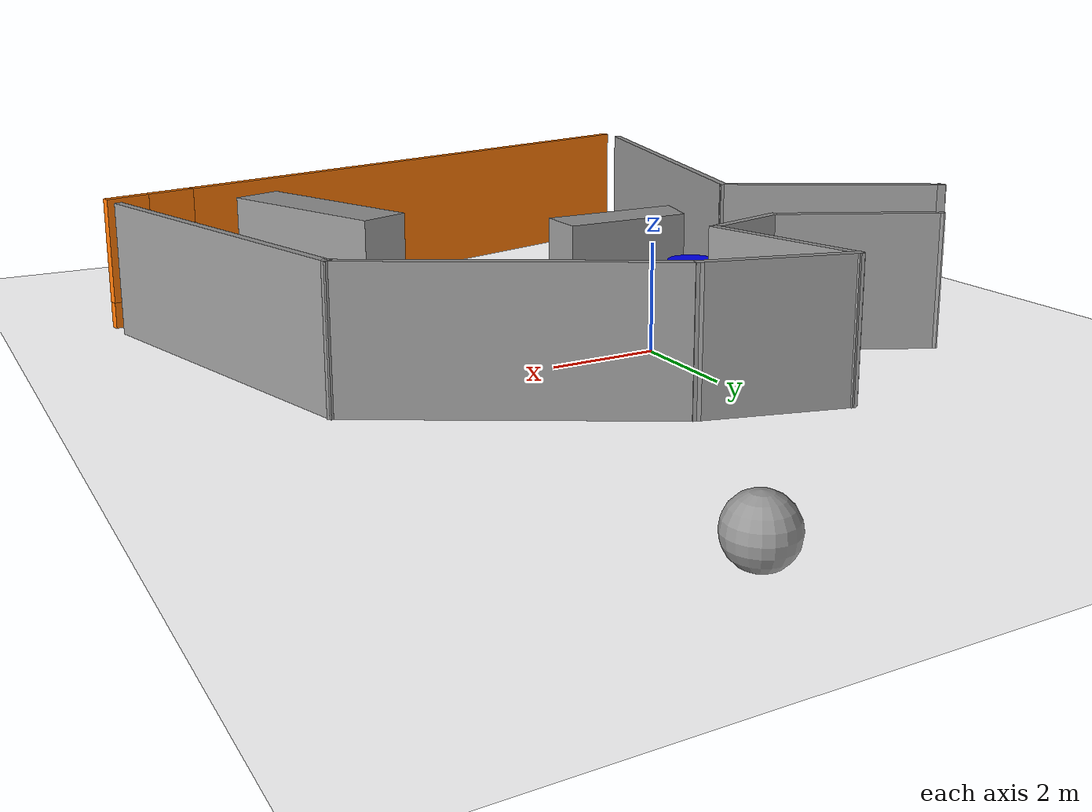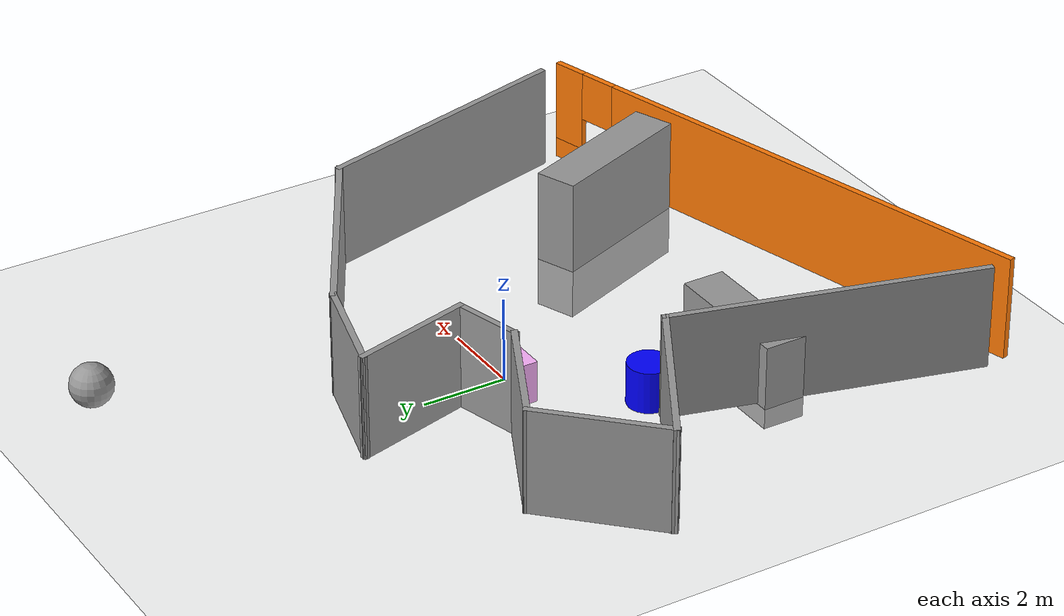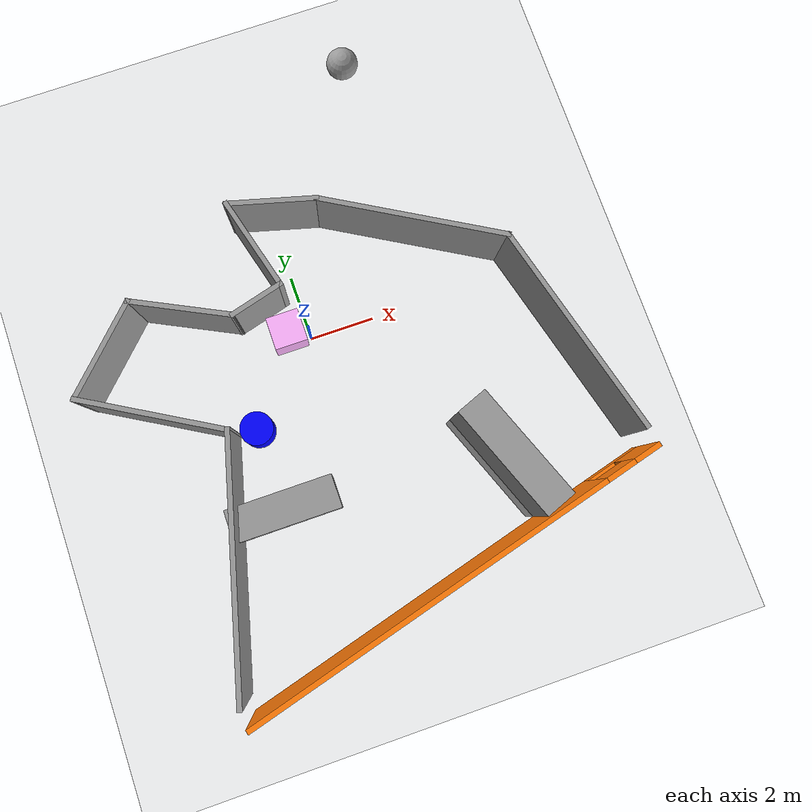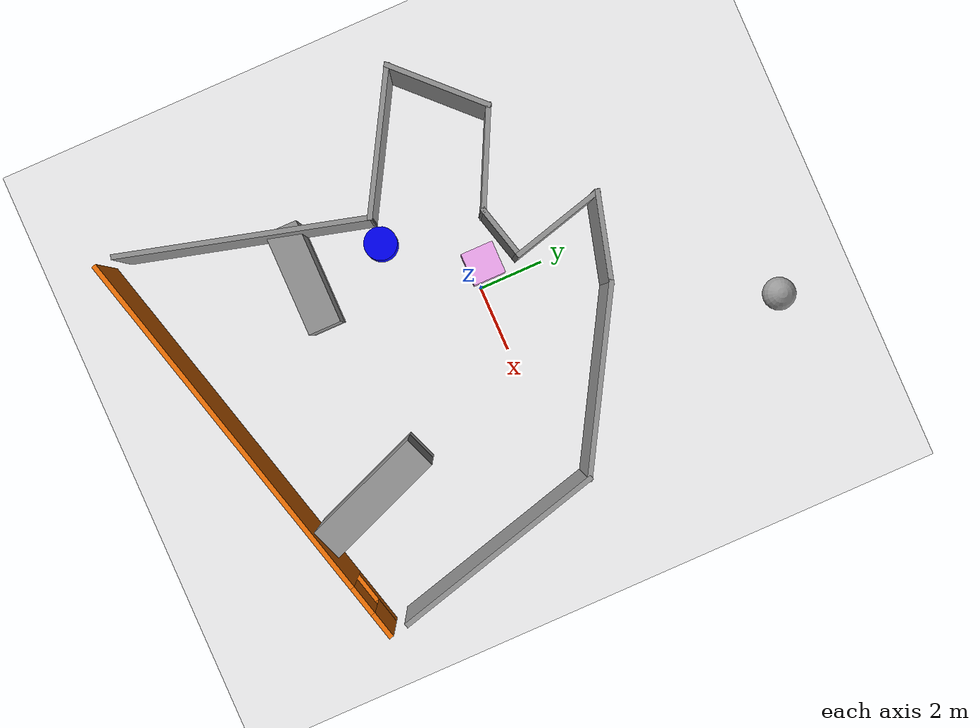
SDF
<sdf version="1.6">
 <world name="default">
  <plugin name="hello" filename="libhello.so"/>
  <light name="sun" type="directional">
   <pose>0 0 10 0 -0 0</pose>
   <diffuse>0.8 0.8 0.8 1</diffuse>
   <specular>0.2 0.2 0.2 1</specular>
   <attenuation>
    <range>1000</range>
    <constant>0.9</constant>
    <linear>0.01</linear>
    <quadratic>0.001</quadratic>
   </attenuation>
   <direction>-0.5 0.1 -0.9</direction>
   <spot><inner_angle>0</inner_angle><outer_angle>0</outer_angle><falloff>0</falloff></spot>
  </light>
  <model name="ground_plane">
   <static>1</static>
   <link name="link">
    <collision name="collision">
     <geometry><plane><normal>0 0 1</normal><size>100 100</size></plane></geometry>
     <surface>
      <contact><collide_bitmask>65535</collide_bitmask></contact>
      <friction><ode><mu>100</mu><mu2>50</mu2></ode></friction>
     </surface>
    </collision>
    <visual name="visual">
     <cast_shadows>0</cast_shadows>
     <geometry><plane><normal>0 0 1</normal><size>100 100</size></plane></geometry>
     <material>
      <script><uri>file://media/materials/scripts/gazebo.material</uri><name>Gazebo/Grey</name></script>
     </material>
    </visual>
   </link>
  </model>
  <gravity>0 0 -9.8</gravity>
  <magnetic_field>6e-06 2.3e-05 -4.2e-05</magnetic_field>
  <atmosphere type="adiabatic"/>
  <physics name="default_physics" default="0" type="ode">
   <max_step_size>0.001</max_step_size>
   <real_time_factor>1</real_time_factor>
   <real_time_update_rate>1000</real_time_update_rate>
  </physics>
  <scene><ambient>0.4 0.4 0.4 1</ambient><background>0.7 0.7 0.7 1</background><shadows>1</shadows></scene>
  <spherical_coordinates>
   <surface_model>EARTH_WGS84</surface_model>
   <latitude_deg>0</latitude_deg>
   <longitude_deg>0</longitude_deg>
   <elevation>0</elevation>
   <heading_deg>0</heading_deg>
  </spherical_coordinates>
  <model name="my_ball">
   <link name="link">
    <inertial>
     <mass>1</mass>
     <inertia><ixx>0.1</ixx><ixy>0</ixy><ixz>0</ixz><iyy>0.1</iyy><iyz>0</iyz><izz>0.1</izz></inertia>
    </inertial>
    <visual name="visual">
     <geometry><sphere><radius>0.5</radius></sphere></geometry>
     <material>
      <script><name>Gazebo/Grey</name><uri>file://media/materials/scripts/gazebo.material</uri></script>
      <shader type="pixel"><normal_map>__default__</normal_map></shader>
      <ambient>1 1 1 1</ambient>
      <diffuse>1 1 1 1</diffuse>
      <specular>1 1 1 1</specular>
      <emissive>1 1 1 1</emissive>
     </material>
    </visual>
    <collision name="collision">
     <geometry><sphere><radius>0.5</radius></sphere></geometry>
     <surface>
      <friction>
       <ode><mu>1</mu><mu2>1</mu2><fdir1>0 0 0</fdir1><slip1>0</slip1><slip2>0</slip2></ode>
       <torsional>
        <coefficient>1</coefficient>
        <patch_radius>0</patch_radius>
        <surface_radius>0</surface_radius>
        <use_patch_radius>1</use_patch_radius>
        <ode><slip>0</slip></ode>
       </torsional>
      </friction>
      <bounce><restitution_coefficient>0</restitution_coefficient><threshold>1e+06</threshold></bounce>
      <contact>
       <collide_without_contact>0</collide_without_contact>
       <collide_without_contact_bitmask>1</collide_without_contact_bitmask>
       <collide_bitmask>1</collide_bitmask>
       <ode>
        <soft_cfm>0</soft_cfm>
        <soft_erp>0.2</soft_erp>
        <kp>1e+13</kp>
        <kd>1</kd>
        <max_vel>0.01</max_vel>
        <min_depth>0</min_depth>
       </ode>
       <bullet>
        <split_impulse>1</split_impulse>
        <split_impulse_penetration_threshold>-0.01</split_impulse_penetration_threshold>
        <soft_cfm>0</soft_cfm>
        <soft_erp>0.2</soft_erp>
        <kp>1e+13</kp>
        <kd>1</kd>
       </bullet>
      </contact>
     </surface>
    </collision>
   </link>
   <static>0</static>
   <pose>3.73171 8.06734 0.5 0 -0 0</pose>
  </model>
  <plugin name="gazebo_occupancy_map" filename="libgazebo_2Dmap_plugin.so">
   <map_resolution>0.1</map_resolution>
   <map_height>0.3</map_height>
   <map_size_x>10</map_size_x>
   <map_size_y>10</map_size_y>
   <init_robot_x>0</init_robot_x>
   <init_robot_y>0</init_robot_y>
  </plugin>
  <plugin name="collision_map_creator" filename="libcollision_map_creator.so"/>
  <model name="unit_cylinder">
   <link name="link">
    <inertial>
     <mass>1</mass>
     <inertia><ixx>0.145833</ixx><ixy>0</ixy><ixz>0</ixz><iyy>0.145833</iyy><iyz>0</iyz><izz>0.125</izz></inertia>
    </inertial>
    <visual name="visual">
     <geometry><cylinder><radius>0.5</radius><length>1</length></cylinder></geometry>
     <material>
      <script><name>Gazebo/Grey</name><uri>file://media/materials/scripts/gazebo.material</uri></script>
      <shader type="pixel"><normal_map>__default__</normal_map></shader>
      <ambient>0 0 1 1</ambient>
      <diffuse>0 0 1 1</diffuse>
      <specular>0 0.01 1 1</specular>
      <emissive>0 0 1 1</emissive>
     </material>
    </visual>
    <collision name="collision">
     <geometry><cylinder><radius>0.5</radius><length>1</length></cylinder></geometry>
     <surface>
      <friction>
       <ode><mu>1</mu><mu2>1</mu2><fdir1>0 0 0</fdir1><slip1>0</slip1><slip2>0</slip2></ode>
       <torsional>
        <coefficient>1</coefficient>
        <patch_radius>0</patch_radius>
        <surface_radius>0</surface_radius>
        <use_patch_radius>1</use_patch_radius>
        <ode><slip>0</slip></ode>
       </torsional>
      </friction>
      <bounce><restitution_coefficient>0</restitution_coefficient><threshold>1e+06</threshold></bounce>
      <contact>
       <collide_without_contact>0</collide_without_contact>
       <collide_without_contact_bitmask>1</collide_without_contact_bitmask>
       <collide_bitmask>1</collide_bitmask>
       <ode>
        <soft_cfm>0</soft_cfm>
        <soft_erp>0.2</soft_erp>
        <kp>1e+13</kp>
        <kd>1</kd>
        <max_vel>0.01</max_vel>
        <min_depth>0</min_depth>
       </ode>
       <bullet>
        <split_impulse>1</split_impulse>
        <split_impulse_penetration_threshold>-0.01</split_impulse_penetration_threshold>
        <soft_cfm>0</soft_cfm>
        <soft_erp>0.2</soft_erp>
        <kp>1e+13</kp>
        <kd>1</kd>
       </bullet>
      </contact>
     </surface>
    </collision>
   </link>
   <static>0</static>
   <pose>-2.37467 -2.19604 0.499993 -3e-06 -2e-06 0</pose>
  </model>
  <model name="unit_box">
   <link name="link">
    <inertial>
     <mass>1</mass>
     <inertia>
      <ixx>0.166667</ixx>
      <ixy>0</ixy>
      <ixz>0</ixz>
      <iyy>0.166667</iyy>
      <iyz>0</iyz>
      <izz>0.166667</izz>
     </inertia>
    </inertial>
    <visual name="visual">
     <geometry><box><size>1 1 1</size></box></geometry>
     <material>
      <script><name>Gazebo/Grey</name><uri>file://media/materials/scripts/gazebo.material</uri></script>
      <shader type="pixel"><normal_map>__default__</normal_map></shader>
      <ambient>0.3 0.3 0.3 1</ambient>
      <diffuse>1 0.7 1 1</diffuse>
      <specular>1 0.01 1 1</specular>
      <emissive>1 0 1 1</emissive>
     </material>
    </visual>
    <collision name="collision">
     <geometry><box><size>1 1 1</size></box></geometry>
     <surface>
      <friction>
       <ode><mu>1</mu><mu2>1</mu2><fdir1>0 0 0</fdir1><slip1>0</slip1><slip2>0</slip2></ode>
       <torsional>
        <coefficient>1</coefficient>
        <patch_radius>0</patch_radius>
        <surface_radius>0</surface_radius>
        <use_patch_radius>1</use_patch_radius>
        <ode><slip>0</slip></ode>
       </torsional>
      </friction>
      <bounce><restitution_coefficient>0</restitution_coefficient><threshold>1e+06</threshold></bounce>
      <contact>
       <collide_without_contact>0</collide_without_contact>
       <collide_without_contact_bitmask>1</collide_without_contact_bitmask>
       <collide_bitmask>1</collide_bitmask>
       <ode>
        <soft_cfm>0</soft_cfm>
        <soft_erp>0.2</soft_erp>
        <kp>1e+13</kp>
        <kd>1</kd>
        <max_vel>0.01</max_vel>
        <min_depth>0</min_depth>
       </ode>
       <bullet>
        <split_impulse>1</split_impulse>
        <split_impulse_penetration_threshold>-0.01</split_impulse_penetration_threshold>
        <soft_cfm>0</soft_cfm>
        <soft_erp>0.2</soft_erp>
        <kp>1e+13</kp>
        <kd>1</kd>
       </bullet>
      </contact>
     </surface>
    </collision>
   </link>
   <static>0</static>
   <pose>-0.625936 0.339686 0.5 0 -0 0</pose>
  </model>
  <model name="Untitled">
   <link name="Wall_0">
    <pose>-6.27688 3.71893 0 0 0 -2.35619</pose>
    <visual name="Wall_0_Visual">
     <pose>0 0 1.25 0 -0 0</pose>
     <geometry><box><size>3.25 0.15 2.5</size></box></geometry>
     <material>
      <script><uri>file://media/materials/scripts/gazebo.material</uri><name>Gazebo/Grey</name></script>
      <ambient>1 1 1 1</ambient>
      <shader type="pixel"/>
      <diffuse>0.7 0.7 0.7 1</diffuse>
      <specular>0.01 0.01 0.01 1</specular>
      <emissive>0 0 0 1</emissive>
     </material>
     <meta><layer>0</layer></meta>
    </visual>
    <collision name="Wall_0_Collision">
     <pose>0 0 1.25 0 -0 0</pose>
     <geometry><box><size>3.25 0.15 2.5</size></box></geometry>
     <surface>
      <friction>
       <ode><mu>1</mu><mu2>1</mu2><fdir1>0 0 0</fdir1><slip1>0</slip1><slip2>0</slip2></ode>
       <torsional>
        <coefficient>1</coefficient>
        <patch_radius>0</patch_radius>
        <surface_radius>0</surface_radius>
        <use_patch_radius>1</use_patch_radius>
        <ode><slip>0</slip></ode>
       </torsional>
      </friction>
      <bounce><restitution_coefficient>0</restitution_coefficient><threshold>1e+06</threshold></bounce>
      <contact>
       <collide_without_contact>0</collide_without_contact>
       <collide_without_contact_bitmask>1</collide_without_contact_bitmask>
       <collide_bitmask>1</collide_bitmask>
       <ode>
        <soft_cfm>0</soft_cfm>
        <soft_erp>0.2</soft_erp>
        <kp>1e+13</kp>
        <kd>1</kd>
        <max_vel>0.01</max_vel>
        <min_depth>0</min_depth>
       </ode>
       <bullet>
        <split_impulse>1</split_impulse>
        <split_impulse_penetration_threshold>-0.01</split_impulse_penetration_threshold>
        <soft_cfm>0</soft_cfm>
        <soft_erp>0.2</soft_erp>
        <kp>1e+13</kp>
        <kd>1</kd>
       </bullet>
      </contact>
     </surface>
    </collision>
   </link>
   <link name="Wall_1">
    <pose>-5.48929 1.53542 0 0 0 -0.523599</pose>
    <visual name="Wall_1_Visual">
     <pose>0 0 1.25 0 -0 0</pose>
     <geometry><box><size>4.5 0.15 2.5</size></box></geometry>
     <material>
      <script><uri>file://media/materials/scripts/gazebo.material</uri><name>Gazebo/Grey</name></script>
      <ambient>1 1 1 1</ambient>
      <shader type="pixel"/>
      <diffuse>0.7 0.7 0.7 1</diffuse>
      <specular>0.01 0.01 0.01 1</specular>
      <emissive>0 0 0 1</emissive>
     </material>
     <meta><layer>0</layer></meta>
    </visual>
    <collision name="Wall_1_Collision">
     <pose>0 0 1.25 0 -0 0</pose>
     <geometry><box><size>4.5 0.15 2.5</size></box></geometry>
     <surface>
      <friction>
       <ode><mu>1</mu><mu2>1</mu2><fdir1>0 0 0</fdir1><slip1>0</slip1><slip2>0</slip2></ode>
       <torsional>
        <coefficient>1</coefficient>
        <patch_radius>0</patch_radius>
        <surface_radius>0</surface_radius>
        <use_patch_radius>1</use_patch_radius>
        <ode><slip>0</slip></ode>
       </torsional>
      </friction>
      <bounce><restitution_coefficient>0</restitution_coefficient><threshold>1e+06</threshold></bounce>
      <contact>
       <collide_without_contact>0</collide_without_contact>
       <collide_without_contact_bitmask>1</collide_without_contact_bitmask>
       <collide_bitmask>1</collide_bitmask>
       <ode>
        <soft_cfm>0</soft_cfm>
        <soft_erp>0.2</soft_erp>
        <kp>1e+13</kp>
        <kd>1</kd>
        <max_vel>0.01</max_vel>
        <min_depth>0</min_depth>
       </ode>
       <bullet>
        <split_impulse>1</split_impulse>
        <split_impulse_penetration_threshold>-0.01</split_impulse_penetration_threshold>
        <soft_cfm>0</soft_cfm>
        <soft_erp>0.2</soft_erp>
        <kp>1e+13</kp>
        <kd>1</kd>
       </bullet>
      </contact>
     </surface>
    </collision>
   </link>
   <link name="Wall_2">
    <pose>-4.55684 -3.10186 0 0 0 -1.8326</pose>
    <visual name="Wall_2_Visual">
     <pose>0 0 1.25 0 -0 0</pose>
     <geometry><box><size>7.5 0.15 2.5</size></box></geometry>
     <material>
      <script><uri>file://media/materials/scripts/gazebo.material</uri><name>Gazebo/Grey</name></script>
      <ambient>1 1 1 1</ambient>
      <shader type="pixel"/>
      <diffuse>0.7 0.7 0.7 1</diffuse>
      <specular>0.01 0.01 0.01 1</specular>
      <emissive>0 0 0 1</emissive>
     </material>
     <meta><layer>0</layer></meta>
    </visual>
    <collision name="Wall_2_Collision">
     <pose>0 0 1.25 0 -0 0</pose>
     <geometry><box><size>7.5 0.15 2.5</size></box></geometry>
     <surface>
      <friction>
       <ode><mu>1</mu><mu2>1</mu2><fdir1>0 0 0</fdir1><slip1>0</slip1><slip2>0</slip2></ode>
       <torsional>
        <coefficient>1</coefficient>
        <patch_radius>0</patch_radius>
        <surface_radius>0</surface_radius>
        <use_patch_radius>1</use_patch_radius>
        <ode><slip>0</slip></ode>
       </torsional>
      </friction>
      <bounce><restitution_coefficient>0</restitution_coefficient><threshold>1e+06</threshold></bounce>
      <contact>
       <collide_without_contact>0</collide_without_contact>
       <collide_without_contact_bitmask>1</collide_without_contact_bitmask>
       <collide_bitmask>1</collide_bitmask>
       <ode>
        <soft_cfm>0</soft_cfm>
        <soft_erp>0.2</soft_erp>
        <kp>1e+13</kp>
        <kd>1</kd>
        <max_vel>0.01</max_vel>
        <min_depth>0</min_depth>
       </ode>
       <bullet>
        <split_impulse>1</split_impulse>
        <split_impulse_penetration_threshold>-0.01</split_impulse_penetration_threshold>
        <soft_cfm>0</soft_cfm>
        <soft_erp>0.2</soft_erp>
        <kp>1e+13</kp>
        <kd>1</kd>
       </bullet>
      </contact>
     </surface>
    </collision>
   </link>
   <link name="Wall_3">
    <pose>1.02123 -5.51923 0 0 -0 0.261799</pose>
    <visual name="Wall_3_Visual_0">
     <pose>-0.895801 0 1.25 0 -0 0</pose>
     <geometry><box><size>11.7084 0.15 2.5</size></box></geometry>
     <material>
      <script><uri>file://media/materials/scripts/gazebo.material</uri><name>Gazebo/Grey</name></script>
      <ambient>0.996078 0.47451 0.0196078 1</ambient>
      <shader type="pixel"/>
      <diffuse>0.7 0.7 0.7 1</diffuse>
      <specular>0.01 0.01 0.01 1</specular>
      <emissive>0 0 0 1</emissive>
     </material>
     <meta><layer>0</layer></meta>
    </visual>
    <visual name="Wall_3_Visual_1">
     <pose>5.8542 0 0.25 0 -0 0</pose>
     <geometry><box><size>1.7916 0.15 0.5</size></box></geometry>
     <material>
      <script><uri>file://media/materials/scripts/gazebo.material</uri><name>Gazebo/Grey</name></script>
      <ambient>0.996078 0.47451 0.0196078 1</ambient>
      <shader type="pixel"/>
      <diffuse>0.7 0.7 0.7 1</diffuse>
      <specular>0.01 0.01 0.01 1</specular>
      <emissive>0 0 0 1</emissive>
     </material>
     <meta><layer>0</layer></meta>
    </visual>
    <visual name="Wall_3_Visual_2">
     <pose>6.32604 0 1.5 0 -0 0</pose>
     <geometry><box><size>0.847917 0.15 2</size></box></geometry>
     <material>
      <script><uri>file://media/materials/scripts/gazebo.material</uri><name>Gazebo/Grey</name></script>
      <ambient>0.996078 0.47451 0.0196078 1</ambient>
      <shader type="pixel"/>
      <diffuse>0.7 0.7 0.7 1</diffuse>
      <specular>0.01 0.01 0.01 1</specular>
      <emissive>0 0 0 1</emissive>
     </material>
     <meta><layer>0</layer></meta>
    </visual>
    <visual name="Wall_3_Visual_3">
     <pose>5.43024 0 1.9 0 -0 0</pose>
     <geometry><box><size>0.943685 0.15 1.2</size></box></geometry>
     <material>
      <script><uri>file://media/materials/scripts/gazebo.material</uri><name>Gazebo/Grey</name></script>
      <ambient>0.996078 0.47451 0.0196078 1</ambient>
      <shader type="pixel"/>
      <diffuse>0.7 0.7 0.7 1</diffuse>
      <specular>0.01 0.01 0.01 1</specular>
      <emissive>0 0 0 1</emissive>
     </material>
     <meta><layer>0</layer></meta>
    </visual>
    <collision name="Wall_3_Collision_0">
     <pose>-0.895801 0 1.25 0 -0 0</pose>
     <geometry><box><size>11.7084 0.15 2.5</size></box></geometry>
     <surface>
      <friction>
       <ode><mu>1</mu><mu2>1</mu2><fdir1>0 0 0</fdir1><slip1>0</slip1><slip2>0</slip2></ode>
       <torsional>
        <coefficient>1</coefficient>
        <patch_radius>0</patch_radius>
        <surface_radius>0</surface_radius>
        <use_patch_radius>1</use_patch_radius>
        <ode><slip>0</slip></ode>
       </torsional>
      </friction>
      <bounce><restitution_coefficient>0</restitution_coefficient><threshold>1e+06</threshold></bounce>
      <contact>
       <collide_without_contact>0</collide_without_contact>
       <collide_without_contact_bitmask>1</collide_without_contact_bitmask>
       <collide_bitmask>1</collide_bitmask>
       <ode>
        <soft_cfm>0</soft_cfm>
        <soft_erp>0.2</soft_erp>
        <kp>1e+13</kp>
        <kd>1</kd>
        <max_vel>0.01</max_vel>
        <min_depth>0</min_depth>
       </ode>
       <bullet>
        <split_impulse>1</split_impulse>
        <split_impulse_penetration_threshold>-0.01</split_impulse_penetration_threshold>
        <soft_cfm>0</soft_cfm>
        <soft_erp>0.2</soft_erp>
        <kp>1e+13</kp>
        <kd>1</kd>
       </bullet>
      </contact>
     </surface>
    </collision>
    <collision name="Wall_3_Collision_1">
     <pose>5.8542 0 0.25 0 -0 0</pose>
     <geometry><box><size>1.7916 0.15 0.5</size></box></geometry>
     <surface>
      <friction>
       <ode><mu>1</mu><mu2>1</mu2><fdir1>0 0 0</fdir1><slip1>0</slip1><slip2>0</slip2></ode>
       <torsional>
        <coefficient>1</coefficient>
        <patch_radius>0</patch_radius>
        <surface_radius>0</surface_radius>
        <use_patch_radius>1</use_patch_radius>
        <ode><slip>0</slip></ode>
       </torsional>
      </friction>
      <bounce><restitution_coefficient>0</restitution_coefficient><threshold>1e+06</threshold></bounce>
      <contact>
       <collide_without_contact>0</collide_without_contact>
       <collide_without_contact_bitmask>1</collide_without_contact_bitmask>
       <collide_bitmask>1</collide_bitmask>
       <ode>
        <soft_cfm>0</soft_cfm>
        <soft_erp>0.2</soft_erp>
        <kp>1e+13</kp>
        <kd>1</kd>
        <max_vel>0.01</max_vel>
        <min_depth>0</min_depth>
       </ode>
       <bullet>
        <split_impulse>1</split_impulse>
        <split_impulse_penetration_threshold>-0.01</split_impulse_penetration_threshold>
        <soft_cfm>0</soft_cfm>
        <soft_erp>0.2</soft_erp>
        <kp>1e+13</kp>
        <kd>1</kd>
       </bullet>
      </contact>
     </surface>
    </collision>
    <collision name="Wall_3_Collision_2">
     <pose>6.32604 0 1.5 0 -0 0</pose>
     <geometry><box><size>0.847917 0.15 2</size></box></geometry>
     <surface>
      <friction>
       <ode><mu>1</mu><mu2>1</mu2><fdir1>0 0 0</fdir1><slip1>0</slip1><slip2>0</slip2></ode>
       <torsional>
        <coefficient>1</coefficient>
        <patch_radius>0</patch_radius>
        <surface_radius>0</surface_radius>
        <use_patch_radius>1</use_patch_radius>
        <ode><slip>0</slip></ode>
       </torsional>
      </friction>
      <bounce><restitution_coefficient>0</restitution_coefficient><threshold>1e+06</threshold></bounce>
      <contact>
       <collide_without_contact>0</collide_without_contact>
       <collide_without_contact_bitmask>1</collide_without_contact_bitmask>
       <collide_bitmask>1</collide_bitmask>
       <ode>
        <soft_cfm>0</soft_cfm>
        <soft_erp>0.2</soft_erp>
        <kp>1e+13</kp>
        <kd>1</kd>
        <max_vel>0.01</max_vel>
        <min_depth>0</min_depth>
       </ode>
       <bullet>
        <split_impulse>1</split_impulse>
        <split_impulse_penetration_threshold>-0.01</split_impulse_penetration_threshold>
        <soft_cfm>0</soft_cfm>
        <soft_erp>0.2</soft_erp>
        <kp>1e+13</kp>
        <kd>1</kd>
       </bullet>
      </contact>
     </surface>
    </collision>
    <collision name="Wall_3_Collision_3">
     <pose>5.43024 0 1.9 0 -0 0</pose>
     <geometry><box><size>0.943685 0.15 1.2</size></box></geometry>
     <surface>
      <friction>
       <ode><mu>1</mu><mu2>1</mu2><fdir1>0 0 0</fdir1><slip1>0</slip1><slip2>0</slip2></ode>
       <torsional>
        <coefficient>1</coefficient>
        <patch_radius>0</patch_radius>
        <surface_radius>0</surface_radius>
        <use_patch_radius>1</use_patch_radius>
        <ode><slip>0</slip></ode>
       </torsional>
      </friction>
      <bounce><restitution_coefficient>0</restitution_coefficient><threshold>1e+06</threshold></bounce>
      <contact>
       <collide_without_contact>0</collide_without_contact>
       <collide_without_contact_bitmask>1</collide_without_contact_bitmask>
       <collide_bitmask>1</collide_bitmask>
       <ode>
        <soft_cfm>0</soft_cfm>
        <soft_erp>0.2</soft_erp>
        <kp>1e+13</kp>
        <kd>1</kd>
        <max_vel>0.01</max_vel>
        <min_depth>0</min_depth>
       </ode>
       <bullet>
        <split_impulse>1</split_impulse>
        <split_impulse_penetration_threshold>-0.01</split_impulse_penetration_threshold>
        <soft_cfm>0</soft_cfm>
        <soft_erp>0.2</soft_erp>
        <kp>1e+13</kp>
        <kd>1</kd>
       </bullet>
      </contact>
     </surface>
    </collision>
   </link>
   <link name="Wall_4">
    <pose>6.533 -0.008848 0 0 -0 1.8326</pose>
    <visual name="Wall_4_Visual">
     <pose>0 0 1.25 0 -0 0</pose>
     <geometry><box><size>6.75 0.15 2.5</size></box></geometry>
     <material>
      <script><uri>file://media/materials/scripts/gazebo.material</uri><name>Gazebo/Grey</name></script>
      <ambient>1 1 1 1</ambient>
      <shader type="pixel"/>
      <diffuse>0.7 0.7 0.7 1</diffuse>
      <specular>0.01 0.01 0.01 1</specular>
      <emissive>0 0 0 1</emissive>
     </material>
     <meta><layer>0</layer></meta>
    </visual>
    <collision name="Wall_4_Collision">
     <pose>0 0 1.25 0 -0 0</pose>
     <geometry><box><size>6.75 0.15 2.5</size></box></geometry>
     <surface>
      <friction>
       <ode><mu>1</mu><mu2>1</mu2><fdir1>0 0 0</fdir1><slip1>0</slip1><slip2>0</slip2></ode>
       <torsional>
        <coefficient>1</coefficient>
        <patch_radius>0</patch_radius>
        <surface_radius>0</surface_radius>
        <use_patch_radius>1</use_patch_radius>
        <ode><slip>0</slip></ode>
       </torsional>
      </friction>
      <bounce><restitution_coefficient>0</restitution_coefficient><threshold>1e+06</threshold></bounce>
      <contact>
       <collide_without_contact>0</collide_without_contact>
       <collide_without_contact_bitmask>1</collide_without_contact_bitmask>
       <collide_bitmask>1</collide_bitmask>
       <ode>
        <soft_cfm>0</soft_cfm>
        <soft_erp>0.2</soft_erp>
        <kp>1e+13</kp>
        <kd>1</kd>
        <max_vel>0.01</max_vel>
        <min_depth>0</min_depth>
       </ode>
       <bullet>
        <split_impulse>1</split_impulse>
        <split_impulse_penetration_threshold>-0.01</split_impulse_penetration_threshold>
        <soft_cfm>0</soft_cfm>
        <soft_erp>0.2</soft_erp>
        <kp>1e+13</kp>
        <kd>1</kd>
       </bullet>
      </contact>
     </surface>
    </collision>
   </link>
   <link name="Wall_5">
    <pose>3.25403 4.57871 0 0 -0 2.61799</pose>
    <visual name="Wall_5_Visual">
     <pose>0 0 1.25 0 -0 0</pose>
     <geometry><box><size>5.75 0.15 2.5</size></box></geometry>
     <material>
      <script><uri>file://media/materials/scripts/gazebo.material</uri><name>Gazebo/Grey</name></script>
      <ambient>1 1 1 1</ambient>
      <shader type="pixel"/>
      <diffuse>0.7 0.7 0.7 1</diffuse>
      <specular>0.01 0.01 0.01 1</specular>
      <emissive>0 0 0 1</emissive>
     </material>
     <meta><layer>0</layer></meta>
    </visual>
    <collision name="Wall_5_Collision">
     <pose>0 0 1.25 0 -0 0</pose>
     <geometry><box><size>5.75 0.15 2.5</size></box></geometry>
     <surface>
      <friction>
       <ode><mu>1</mu><mu2>1</mu2><fdir1>0 0 0</fdir1><slip1>0</slip1><slip2>0</slip2></ode>
       <torsional>
        <coefficient>1</coefficient>
        <patch_radius>0</patch_radius>
        <surface_radius>0</surface_radius>
        <use_patch_radius>1</use_patch_radius>
        <ode><slip>0</slip></ode>
       </torsional>
      </friction>
      <bounce><restitution_coefficient>0</restitution_coefficient><threshold>1e+06</threshold></bounce>
      <contact>
       <collide_without_contact>0</collide_without_contact>
       <collide_without_contact_bitmask>1</collide_without_contact_bitmask>
       <collide_bitmask>1</collide_bitmask>
       <ode>
        <soft_cfm>0</soft_cfm>
        <soft_erp>0.2</soft_erp>
        <kp>1e+13</kp>
        <kd>1</kd>
        <max_vel>0.01</max_vel>
        <min_depth>0</min_depth>
       </ode>
       <bullet>
        <split_impulse>1</split_impulse>
        <split_impulse_penetration_threshold>-0.01</split_impulse_penetration_threshold>
        <soft_cfm>0</soft_cfm>
        <soft_erp>0.2</soft_erp>
        <kp>1e+13</kp>
        <kd>1</kd>
       </bullet>
      </contact>
     </surface>
    </collision>
   </link>
   <link name="Wall_6">
    <pose>-0.426546 6.31517 0 0 -0 2.87979</pose>
    <visual name="Wall_6_Visual">
     <pose>0 0 1.25 0 -0 0</pose>
     <geometry><box><size>2.75 0.15 2.5</size></box></geometry>
     <material>
      <script><uri>file://media/materials/scripts/gazebo.material</uri><name>Gazebo/Grey</name></script>
      <ambient>1 1 1 1</ambient>
      <shader type="pixel"/>
      <diffuse>0.7 0.7 0.7 1</diffuse>
      <specular>0.01 0.01 0.01 1</specular>
      <emissive>0 0 0 1</emissive>
     </material>
     <meta><layer>0</layer></meta>
    </visual>
    <collision name="Wall_6_Collision">
     <pose>0 0 1.25 0 -0 0</pose>
     <geometry><box><size>2.75 0.15 2.5</size></box></geometry>
     <surface>
      <friction>
       <ode><mu>1</mu><mu2>1</mu2><fdir1>0 0 0</fdir1><slip1>0</slip1><slip2>0</slip2></ode>
       <torsional>
        <coefficient>1</coefficient>
        <patch_radius>0</patch_radius>
        <surface_radius>0</surface_radius>
        <use_patch_radius>1</use_patch_radius>
        <ode><slip>0</slip></ode>
       </torsional>
      </friction>
      <bounce><restitution_coefficient>0</restitution_coefficient><threshold>1e+06</threshold></bounce>
      <contact>
       <collide_without_contact>0</collide_without_contact>
       <collide_without_contact_bitmask>1</collide_without_contact_bitmask>
       <collide_bitmask>1</collide_bitmask>
       <ode>
        <soft_cfm>0</soft_cfm>
        <soft_erp>0.2</soft_erp>
        <kp>1e+13</kp>
        <kd>1</kd>
        <max_vel>0.01</max_vel>
        <min_depth>0</min_depth>
       </ode>
       <bullet>
        <split_impulse>1</split_impulse>
        <split_impulse_penetration_threshold>-0.01</split_impulse_penetration_threshold>
        <soft_cfm>0</soft_cfm>
        <soft_erp>0.2</soft_erp>
        <kp>1e+13</kp>
        <kd>1</kd>
       </bullet>
      </contact>
     </surface>
    </collision>
   </link>
   <link name="Wall_7">
    <pose>-1.31343 5.27519 0 0 0 -1.309</pose>
    <visual name="Wall_7_Visual">
     <pose>0 0 1.25 0 -0 0</pose>
     <geometry><box><size>3 0.15 2.5</size></box></geometry>
     <material>
      <script><uri>file://media/materials/scripts/gazebo.material</uri><name>Gazebo/Grey</name></script>
      <ambient>1 1 1 1</ambient>
      <shader type="pixel"/>
      <diffuse>0.7 0.7 0.7 1</diffuse>
      <specular>0.01 0.01 0.01 1</specular>
      <emissive>0 0 0 1</emissive>
     </material>
     <meta><layer>0</layer></meta>
    </visual>
    <collision name="Wall_7_Collision">
     <pose>0 0 1.25 0 -0 0</pose>
     <geometry><box><size>3 0.15 2.5</size></box></geometry>
     <surface>
      <friction>
       <ode><mu>1</mu><mu2>1</mu2><fdir1>0 0 0</fdir1><slip1>0</slip1><slip2>0</slip2></ode>
       <torsional>
        <coefficient>1</coefficient>
        <patch_radius>0</patch_radius>
        <surface_radius>0</surface_radius>
        <use_patch_radius>1</use_patch_radius>
        <ode><slip>0</slip></ode>
       </torsional>
      </friction>
      <bounce><restitution_coefficient>0</restitution_coefficient><threshold>1e+06</threshold></bounce>
      <contact>
       <collide_without_contact>0</collide_without_contact>
       <collide_without_contact_bitmask>1</collide_without_contact_bitmask>
       <collide_bitmask>1</collide_bitmask>
       <ode>
        <soft_cfm>0</soft_cfm>
        <soft_erp>0.2</soft_erp>
        <kp>1e+13</kp>
        <kd>1</kd>
        <max_vel>0.01</max_vel>
        <min_depth>0</min_depth>
       </ode>
       <bullet>
        <split_impulse>1</split_impulse>
        <split_impulse_penetration_threshold>-0.01</split_impulse_penetration_threshold>
        <soft_cfm>0</soft_cfm>
        <soft_erp>0.2</soft_erp>
        <kp>1e+13</kp>
        <kd>1</kd>
       </bullet>
      </contact>
     </surface>
    </collision>
   </link>
   <link name="Wall_8">
    <pose>-1.71736 3.69169 0 0 0 -2.87979</pose>
    <visual name="Wall_8_Visual">
     <pose>0 0 1.25 0 -0 0</pose>
     <geometry><box><size>1.75 0.15 2.5</size></box></geometry>
     <material>
      <script><uri>file://media/materials/scripts/gazebo.material</uri><name>Gazebo/Grey</name></script>
      <ambient>1 1 1 1</ambient>
      <shader type="pixel"/>
      <diffuse>0.7 0.7 0.7 1</diffuse>
      <specular>0.01 0.01 0.01 1</specular>
      <emissive>0 0 0 1</emissive>
     </material>
     <meta><layer>0</layer></meta>
    </visual>
    <collision name="Wall_8_Collision">
     <pose>0 0 1.25 0 -0 0</pose>
     <geometry><box><size>1.75 0.15 2.5</size></box></geometry>
     <surface>
      <friction>
       <ode><mu>1</mu><mu2>1</mu2><fdir1>0 0 0</fdir1><slip1>0</slip1><slip2>0</slip2></ode>
       <torsional>
        <coefficient>1</coefficient>
        <patch_radius>0</patch_radius>
        <surface_radius>0</surface_radius>
        <use_patch_radius>1</use_patch_radius>
        <ode><slip>0</slip></ode>
       </torsional>
      </friction>
      <bounce><restitution_coefficient>0</restitution_coefficient><threshold>1e+06</threshold></bounce>
      <contact>
       <collide_without_contact>0</collide_without_contact>
       <collide_without_contact_bitmask>1</collide_without_contact_bitmask>
       <collide_bitmask>1</collide_bitmask>
       <ode>
        <soft_cfm>0</soft_cfm>
        <soft_erp>0.2</soft_erp>
        <kp>1e+13</kp>
        <kd>1</kd>
        <max_vel>0.01</max_vel>
        <min_depth>0</min_depth>
       </ode>
       <bullet>
        <split_impulse>1</split_impulse>
        <split_impulse_penetration_threshold>-0.01</split_impulse_penetration_threshold>
        <soft_cfm>0</soft_cfm>
        <soft_erp>0.2</soft_erp>
        <kp>1e+13</kp>
        <kd>1</kd>
       </bullet>
      </contact>
     </surface>
    </collision>
   </link>
   <link name="Wall_9">
    <pose>-3.83548 4.14979 0 0 -0 2.68244</pose>
    <visual name="Wall_9_Visual">
     <pose>0 0 1.25 0 -0 0</pose>
     <geometry><box><size>3.15166 0.15 2.5</size></box></geometry>
     <material>
      <script><uri>file://media/materials/scripts/gazebo.material</uri><name>Gazebo/Grey</name></script>
      <ambient>1 1 1 1</ambient>
      <shader type="pixel"/>
      <diffuse>0.7 0.7 0.7 1</diffuse>
      <specular>0.01 0.01 0.01 1</specular>
      <emissive>0 0 0 1</emissive>
     </material>
     <meta><layer>0</layer></meta>
    </visual>
    <collision name="Wall_9_Collision">
     <pose>0 0 1.25 0 -0 0</pose>
     <geometry><box><size>3.15166 0.15 2.5</size></box></geometry>
     <surface>
      <friction>
       <ode><mu>1</mu><mu2>1</mu2><fdir1>0 0 0</fdir1><slip1>0</slip1><slip2>0</slip2></ode>
       <torsional>
        <coefficient>1</coefficient>
        <patch_radius>0</patch_radius>
        <surface_radius>0</surface_radius>
        <use_patch_radius>1</use_patch_radius>
        <ode><slip>0</slip></ode>
       </torsional>
      </friction>
      <bounce><restitution_coefficient>0</restitution_coefficient><threshold>1e+06</threshold></bounce>
      <contact>
       <collide_without_contact>0</collide_without_contact>
       <collide_without_contact_bitmask>1</collide_without_contact_bitmask>
       <collide_bitmask>1</collide_bitmask>
       <ode>
        <soft_cfm>0</soft_cfm>
        <soft_erp>0.2</soft_erp>
        <kp>1e+13</kp>
        <kd>1</kd>
        <max_vel>0.01</max_vel>
        <min_depth>0</min_depth>
       </ode>
       <bullet>
        <split_impulse>1</split_impulse>
        <split_impulse_penetration_threshold>-0.01</split_impulse_penetration_threshold>
        <soft_cfm>0</soft_cfm>
        <soft_erp>0.2</soft_erp>
        <kp>1e+13</kp>
        <kd>1</kd>
       </bullet>
      </contact>
     </surface>
    </collision>
   </link>
   <link name="link_0">
    <pose>3.76022 -2.70805 0.5 0 -0 0.369481</pose>
    <inertial>
     <mass>12.9633</mass>
     <inertia><ixx>28.1225</ixx><ixy>0</ixy><ixz>0</ixz><iyy>13.8722</iyy><iyz>0</iyz><izz>16.4108</izz></inertia>
    </inertial>
    <visual name="visual">
     <geometry><box><size>1 3.76715 3.44114</size></box></geometry>
     <material>
      <lighting>1</lighting>
      <script><uri>file://media/materials/scripts/gazebo.material</uri><name>Gazebo/Grey</name></script>
      <shader type="pixel"/>
      <ambient>0.3 0.3 0.3 1</ambient>
      <diffuse>0.7 0.7 0.7 1</diffuse>
      <specular>0.01 0.01 0.01 1</specular>
      <emissive>0 0 0 1</emissive>
     </material>
    </visual>
    <collision name="collision">
     <geometry><box><size>1 3.76715 3.44114</size></box></geometry>
     <surface>
      <friction>
       <ode><mu>1</mu><mu2>1</mu2><fdir1>0 0 0</fdir1><slip1>0</slip1><slip2>0</slip2></ode>
       <torsional>
        <coefficient>1</coefficient>
        <patch_radius>0</patch_radius>
        <surface_radius>0</surface_radius>
        <use_patch_radius>1</use_patch_radius>
        <ode><slip>0</slip></ode>
       </torsional>
      </friction>
      <bounce><restitution_coefficient>0</restitution_coefficient><threshold>1e+06</threshold></bounce>
      <contact>
       <collide_without_contact>0</collide_without_contact>
       <collide_without_contact_bitmask>1</collide_without_contact_bitmask>
       <collide_bitmask>1</collide_bitmask>
       <ode>
        <soft_cfm>0</soft_cfm>
        <soft_erp>0.2</soft_erp>
        <kp>1e+13</kp>
        <kd>1</kd>
        <max_vel>0.01</max_vel>
        <min_depth>0</min_depth>
       </ode>
       <bullet>
        <split_impulse>1</split_impulse>
        <split_impulse_penetration_threshold>-0.01</split_impulse_penetration_threshold>
        <soft_cfm>0</soft_cfm>
        <soft_erp>0.2</soft_erp>
        <kp>1e+13</kp>
        <kd>1</kd>
       </bullet>
      </contact>
     </surface>
    </collision>
   </link>
   <link name="link_1">
    <pose>-2.89315 -2.06857 0.5 0 -0 0</pose>
    <inertial>
     <mass>6.48681</mass>
     <inertia><ixx>2.7495</ixx><ixy>0</ixy><ixz>0</ixz><iyy>7.77541</iyy><iyz>0</iyz><izz>6.10704</izz></inertia>
    </inertial>
    <visual name="visual">
     <geometry><box><size>3.20897 1 2.02147</size></box></geometry>
     <material>
      <lighting>1</lighting>
      <script><uri>file://media/materials/scripts/gazebo.material</uri><name>Gazebo/Grey</name></script>
      <shader type="pixel"/>
      <ambient>0.3 0.3 0.3 1</ambient>
      <diffuse>0.7 0.7 0.7 1</diffuse>
      <specular>0.01 0.01 0.01 1</specular>
      <emissive>0 0 0 1</emissive>
     </material>
    </visual>
    <collision name="collision">
     <geometry><box><size>3.20897 1 2.02147</size></box></geometry>
     <surface>
      <friction>
       <ode><mu>1</mu><mu2>1</mu2><fdir1>0 0 0</fdir1><slip1>0</slip1><slip2>0</slip2></ode>
       <torsional>
        <coefficient>1</coefficient>
        <patch_radius>0</patch_radius>
        <surface_radius>0</surface_radius>
        <use_patch_radius>1</use_patch_radius>
        <ode><slip>0</slip></ode>
       </torsional>
      </friction>
      <bounce><restitution_coefficient>0</restitution_coefficient><threshold>1e+06</threshold></bounce>
      <contact>
       <collide_without_contact>0</collide_without_contact>
       <collide_without_contact_bitmask>1</collide_without_contact_bitmask>
       <collide_bitmask>1</collide_bitmask>
       <ode>
        <soft_cfm>0</soft_cfm>
        <soft_erp>0.2</soft_erp>
        <kp>1e+13</kp>
        <kd>1</kd>
        <max_vel>0.01</max_vel>
        <min_depth>0</min_depth>
       </ode>
       <bullet>
        <split_impulse>1</split_impulse>
        <split_impulse_penetration_threshold>-0.01</split_impulse_penetration_threshold>
        <soft_cfm>0</soft_cfm>
        <soft_erp>0.2</soft_erp>
        <kp>1e+13</kp>
        <kd>1</kd>
       </bullet>
      </contact>
     </surface>
    </collision>
   </link>
   <static>1</static>
   <pose>0.56233 -2.59093 0 0 -0 0</pose>
  </model>
 </world>
</sdf>
